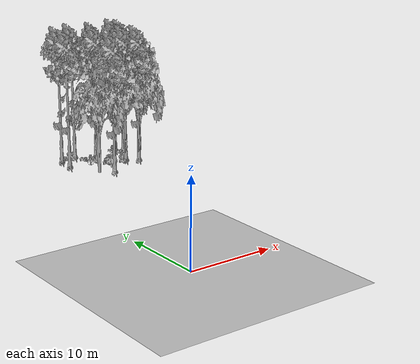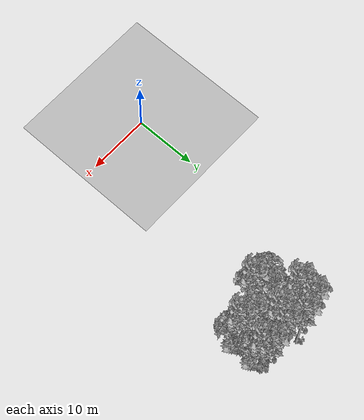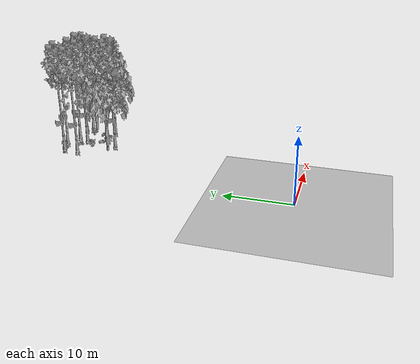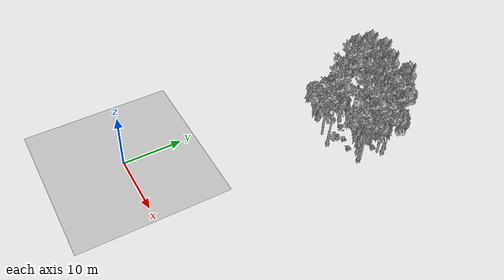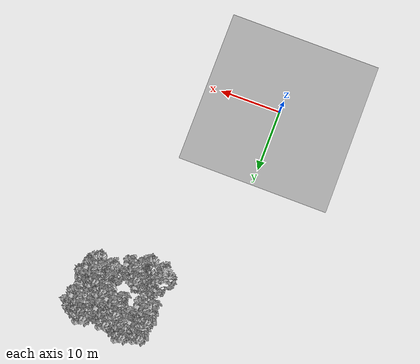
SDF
<sdf version="1.7">
 <world name="default">
  <model name="ground_plane">
   <static>1</static>
   <link name="link">
    <collision name="collision">
     <pose>-50 0 0 0 -0 0</pose>
     <geometry><plane><normal>0 0 1</normal><size>80 80</size></plane></geometry>
     <surface><contact><ode><min_depth>0.01</min_depth><max_vel>0</max_vel></ode></contact></surface>
    </collision>
    <visual name="grass">
     <cast_shadows>0</cast_shadows>
     <geometry>
      <mesh>
       <scale>0.46714285714285714 0.46714285714285714 0.1</scale>
       <uri>file://grass_plane/meshes/grass_plane.dae</uri>
      </mesh>
     </geometry>
    </visual>
   </link>
  </model>
  <model name="Tree 86">
   <static>1</static>
   <pose>17.27342913404661 37.99663143142001 0 1.57079 -0 0</pose>
   <link name="link">
    <collision name="collision">
     <geometry><mesh><scale>3.5 5 3.5</scale><uri>model://tree_9/meshes/tree_9.obj</uri></mesh></geometry>
    </collision>
    <visual name="visual">
     <geometry><mesh><scale>3.5 5 3.5</scale><uri>model://tree_9/meshes/tree_9.obj</uri></mesh></geometry>
    </visual>
   </link>
  </model>
  <model name="Tree 91">
   <static>1</static>
   <pose>16.762759308967752 33.574091901520404 0 1.57079 -0 0</pose>
   <link name="link">
    <collision name="collision">
     <geometry><mesh><scale>3.5 5 3.5</scale><uri>model://tree_9/meshes/tree_9.obj</uri></mesh></geometry>
    </collision>
    <visual name="visual">
     <geometry><mesh><scale>3.5 5 3.5</scale><uri>model://tree_9/meshes/tree_9.obj</uri></mesh></geometry>
    </visual>
   </link>
  </model>
  <model name="Tree 107">
   <static>1</static>
   <pose>16.90294394540735 37.10460507475305 0 1.57079 -0 0</pose>
   <link name="link">
    <collision name="collision">
     <geometry><mesh><scale>3.5 5 3.5</scale><uri>model://tree_2/meshes/tree_2.obj</uri></mesh></geometry>
    </collision>
    <visual name="visual">
     <geometry><mesh><scale>3.5 5 3.5</scale><uri>model://tree_2/meshes/tree_2.obj</uri></mesh></geometry>
    </visual>
   </link>
  </model>
  <model name="Tree 130">
   <static>1</static>
   <pose>7.974937847626514 36.259988826958704 0 1.57079 -0 0</pose>
   <link name="link">
    <collision name="collision">
     <geometry><mesh><scale>3.5 5 3.5</scale><uri>model://tree_9/meshes/tree_9.obj</uri></mesh></geometry>
    </collision>
    <visual name="visual">
     <geometry><mesh><scale>3.5 5 3.5</scale><uri>model://tree_9/meshes/tree_9.obj</uri></mesh></geometry>
    </visual>
   </link>
  </model>
  <model name="Tree 257">
   <static>1</static>
   <pose>9.389933035503695 31.58297876196687 0 1.57079 -0 0</pose>
   <link name="link">
    <collision name="collision">
     <geometry><mesh><scale>3.5 5 3.5</scale><uri>model://tree_2/meshes/tree_2.obj</uri></mesh></geometry>
    </collision>
    <visual name="visual">
     <geometry><mesh><scale>3.5 5 3.5</scale><uri>model://tree_2/meshes/tree_2.obj</uri></mesh></geometry>
    </visual>
   </link>
  </model>
  <model name="Tree 289">
   <static>1</static>
   <pose>13.331808307677768 38.515122127781325 0 1.57079 -0 0</pose>
   <link name="link">
    <collision name="collision">
     <geometry><mesh><scale>3.5 5 3.5</scale><uri>model://tree_9/meshes/tree_9.obj</uri></mesh></geometry>
    </collision>
    <visual name="visual">
     <geometry><mesh><scale>3.5 5 3.5</scale><uri>model://tree_9/meshes/tree_9.obj</uri></mesh></geometry>
    </visual>
   </link>
  </model>
  <model name="Tree 317">
   <static>1</static>
   <pose>8.233469210305643 38.679063035904804 0 1.57079 -0 0</pose>
   <link name="link">
    <collision name="collision">
     <geometry><mesh><scale>3.5 5 3.5</scale><uri>model://tree_9/meshes/tree_9.obj</uri></mesh></geometry>
    </collision>
    <visual name="visual">
     <geometry><mesh><scale>3.5 5 3.5</scale><uri>model://tree_9/meshes/tree_9.obj</uri></mesh></geometry>
    </visual>
   </link>
  </model>
  <model name="Tree 357">
   <static>1</static>
   <pose>12.471517604465781 36.73933715718887 0 1.57079 -0 0</pose>
   <link name="link">
    <collision name="collision">
     <geometry><mesh><scale>3.5 5 3.5</scale><uri>model://tree_9/meshes/tree_9.obj</uri></mesh></geometry>
    </collision>
    <visual name="visual">
     <geometry><mesh><scale>3.5 5 3.5</scale><uri>model://tree_9/meshes/tree_9.obj</uri></mesh></geometry>
    </visual>
   </link>
  </model>
  <model name="Tree 391">
   <static>1</static>
   <pose>11.519411018407702 31.267239681219394 0 1.57079 -0 0</pose>
   <link name="link">
    <collision name="collision">
     <geometry><mesh><scale>3.5 5 3.5</scale><uri>model://tree_9/meshes/tree_9.obj</uri></mesh></geometry>
    </collision>
    <visual name="visual">
     <geometry><mesh><scale>3.5 5 3.5</scale><uri>model://tree_9/meshes/tree_9.obj</uri></mesh></geometry>
    </visual>
   </link>
  </model>
  <model name="Tree 439">
   <static>1</static>
   <pose>16.86335400262422 33.721480888996524 0 1.57079 -0 0</pose>
   <link name="link">
    <collision name="collision">
     <geometry><mesh><scale>3.5 5 3.5</scale><uri>model://tree_2/meshes/tree_2.obj</uri></mesh></geometry>
    </collision>
    <visual name="visual">
     <geometry><mesh><scale>3.5 5 3.5</scale><uri>model://tree_2/meshes/tree_2.obj</uri></mesh></geometry>
    </visual>
   </link>
  </model>
  <model name="Tree 498">
   <static>1</static>
   <pose>10.60546770596578 39.38855260198375 0 1.57079 -0 0</pose>
   <link name="link">
    <collision name="collision">
     <geometry><mesh><scale>3.5 5 3.5</scale><uri>model://tree_9/meshes/tree_9.obj</uri></mesh></geometry>
    </collision>
    <visual name="visual">
     <geometry><mesh><scale>3.5 5 3.5</scale><uri>model://tree_9/meshes/tree_9.obj</uri></mesh></geometry>
    </visual>
   </link>
  </model>
  <model name="Tree 516">
   <static>1</static>
   <pose>16.60924515916063 38.926240117109245 0 1.57079 -0 0</pose>
   <link name="link">
    <collision name="collision">
     <geometry><mesh><scale>3.5 5 3.5</scale><uri>model://tree_9/meshes/tree_9.obj</uri></mesh></geometry>
    </collision>
    <visual name="visual">
     <geometry><mesh><scale>3.5 5 3.5</scale><uri>model://tree_9/meshes/tree_9.obj</uri></mesh></geometry>
    </visual>
   </link>
  </model>
  <model name="Tree 534">
   <static>1</static>
   <pose>15.337457514661736 34.46410357187361 0 1.57079 -0 0</pose>
   <link name="link">
    <collision name="collision">
     <geometry><mesh><scale>3.5 5 3.5</scale><uri>model://tree_9/meshes/tree_9.obj</uri></mesh></geometry>
    </collision>
    <visual name="visual">
     <geometry><mesh><scale>3.5 5 3.5</scale><uri>model://tree_9/meshes/tree_9.obj</uri></mesh></geometry>
    </visual>
   </link>
  </model>
  <model name="Bush 38">
   <static>1</static>
   <pose>14.701488960413421 36.50395414390255 0 1.57079 -0 0</pose>
   <link name="link">
    <collision name="collision">
     <geometry><mesh><scale>2 2 2</scale><uri>model://bush_4/meshes/bush_4.obj</uri></mesh></geometry>
     <surface><contact><collide_without_contact>false</collide_without_contact></contact></surface>
    </collision>
    <visual name="visual">
     <geometry><mesh><scale>2 2 2</scale><uri>model://bush_4/meshes/bush_4.obj</uri></mesh></geometry>
    </visual>
   </link>
  </model>
  <model name="Bush 208">
   <static>1</static>
   <pose>11.693208417817836 32.22517522397612 0 1.57079 -0 0</pose>
   <link name="link">
    <collision name="collision">
     <geometry><mesh><scale>2 2 2</scale><uri>model://bush_1/meshes/bush_1.obj</uri></mesh></geometry>
     <surface><contact><collide_without_contact>false</collide_without_contact></contact></surface>
    </collision>
    <visual name="visual">
     <geometry><mesh><scale>2 2 2</scale><uri>model://bush_1/meshes/bush_1.obj</uri></mesh></geometry>
    </visual>
   </link>
  </model>
  <model name="Bush 284">
   <static>1</static>
   <pose>12.119843186959436 33.96486151815634 0 1.57079 -0 0</pose>
   <link name="link">
    <collision name="collision">
     <geometry><mesh><scale>2 2 2</scale><uri>model://bush_2/meshes/bush_2.obj</uri></mesh></geometry>
     <surface><contact><collide_without_contact>false</collide_without_contact></contact></surface>
    </collision>
    <visual name="visual">
     <geometry><mesh><scale>2 2 2</scale><uri>model://bush_2/meshes/bush_2.obj</uri></mesh></geometry>
    </visual>
   </link>
  </model>
  <model name="Bush 287">
   <static>1</static>
   <pose>14.183240174468956 33.402176944074384 0 1.57079 -0 0</pose>
   <link name="link">
    <collision name="collision">
     <geometry><mesh><scale>2 2 2</scale><uri>model://bush_2/meshes/bush_2.obj</uri></mesh></geometry>
     <surface><contact><collide_without_contact>false</collide_without_contact></contact></surface>
    </collision>
    <visual name="visual">
     <geometry><mesh><scale>2 2 2</scale><uri>model://bush_2/meshes/bush_2.obj</uri></mesh></geometry>
    </visual>
   </link>
  </model>
  <model name="Bush 288">
   <static>1</static>
   <pose>8.511081083688495 38.69074951965624 0 1.57079 -0 0</pose>
   <link name="link">
    <collision name="collision">
     <geometry><mesh><scale>2 2 2</scale><uri>model://bush_2/meshes/bush_2.obj</uri></mesh></geometry>
     <surface><contact><collide_without_contact>false</collide_without_contact></contact></surface>
    </collision>
    <visual name="visual">
     <geometry><mesh><scale>2 2 2</scale><uri>model://bush_2/meshes/bush_2.obj</uri></mesh></geometry>
    </visual>
   </link>
  </model>
  <model name="Bush 299">
   <static>1</static>
   <pose>10.237245066848516 39.829927979743886 0 1.57079 -0 0</pose>
   <link name="link">
    <collision name="collision">
     <geometry><mesh><scale>2 2 2</scale><uri>model://bush_2/meshes/bush_2.obj</uri></mesh></geometry>
     <surface><contact><collide_without_contact>false</collide_without_contact></contact></surface>
    </collision>
    <visual name="visual">
     <geometry><mesh><scale>2 2 2</scale><uri>model://bush_2/meshes/bush_2.obj</uri></mesh></geometry>
    </visual>
   </link>
  </model>
  <model name="Bush 453">
   <static>1</static>
   <pose>10.45943022353471 36.921414334448954 0 1.57079 -0 0</pose>
   <link name="link">
    <collision name="collision">
     <geometry><mesh><scale>2 2 2</scale><uri>model://bush_2/meshes/bush_2.obj</uri></mesh></geometry>
     <surface><contact><collide_without_contact>false</collide_without_contact></contact></surface>
    </collision>
    <visual name="visual">
     <geometry><mesh><scale>2 2 2</scale><uri>model://bush_2/meshes/bush_2.obj</uri></mesh></geometry>
    </visual>
   </link>
  </model>
  <model name="Bush 523">
   <static>1</static>
   <pose>15.10254711584382 34.87171053265328 0 1.57079 -0 0</pose>
   <link name="link">
    <collision name="collision">
     <geometry><mesh><scale>2 2 2</scale><uri>model://bush_2/meshes/bush_2.obj</uri></mesh></geometry>
     <surface><contact><collide_without_contact>false</collide_without_contact></contact></surface>
    </collision>
    <visual name="visual">
     <geometry><mesh><scale>2 2 2</scale><uri>model://bush_2/meshes/bush_2.obj</uri></mesh></geometry>
    </visual>
   </link>
  </model>
  <model name="Bush 529">
   <static>1</static>
   <pose>10.187724340561566 34.619923885934924 0 1.57079 -0 0</pose>
   <link name="link">
    <collision name="collision">
     <geometry><mesh><scale>2 2 2</scale><uri>model://bush_4/meshes/bush_4.obj</uri></mesh></geometry>
     <surface><contact><collide_without_contact>false</collide_without_contact></contact></surface>
    </collision>
    <visual name="visual">
     <geometry><mesh><scale>2 2 2</scale><uri>model://bush_4/meshes/bush_4.obj</uri></mesh></geometry>
    </visual>
   </link>
  </model>
  <model name="Bush 604">
   <static>1</static>
   <pose>15.898576745775536 37.02503696479762 0 1.57079 -0 0</pose>
   <link name="link">
    <collision name="collision">
     <geometry><mesh><scale>2 2 2</scale><uri>model://bush_2/meshes/bush_2.obj</uri></mesh></geometry>
     <surface><contact><collide_without_contact>false</collide_without_contact></contact></surface>
    </collision>
    <visual name="visual">
     <geometry><mesh><scale>2 2 2</scale><uri>model://bush_2/meshes/bush_2.obj</uri></mesh></geometry>
    </visual>
   </link>
  </model>
 </world>
</sdf>
